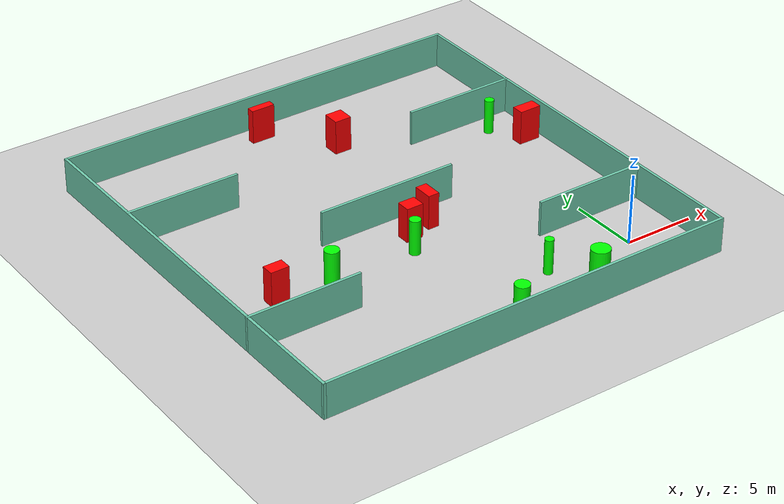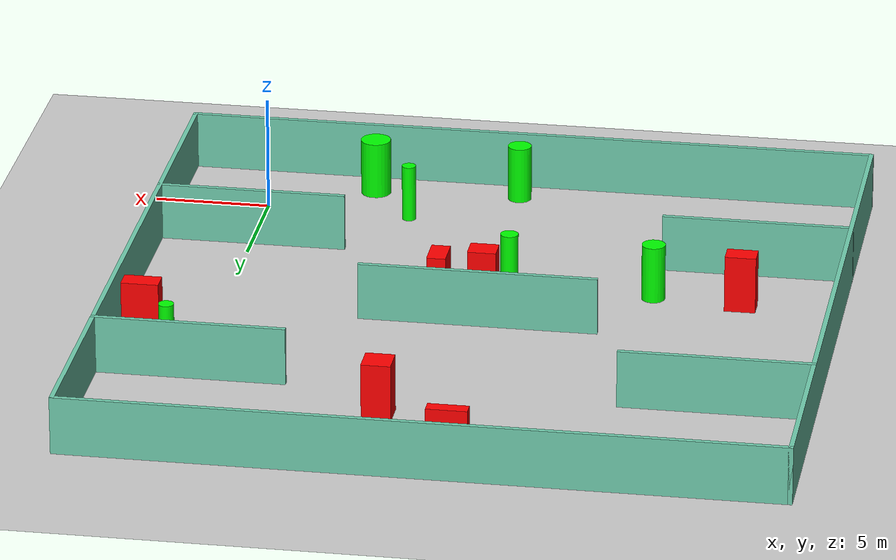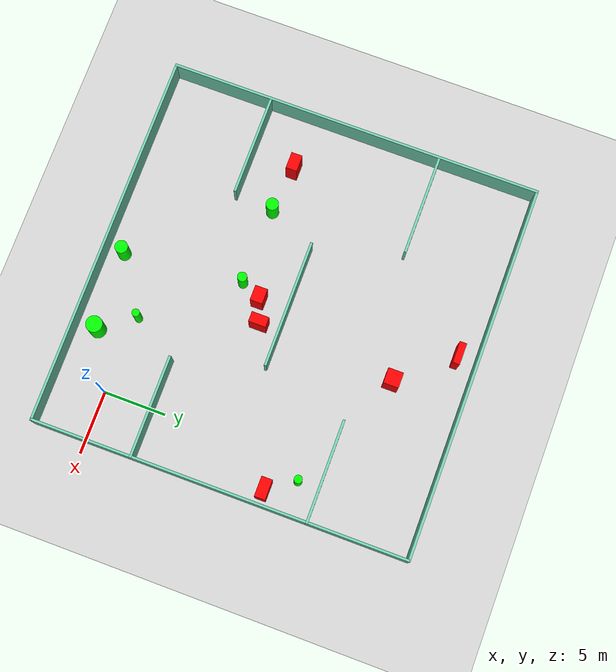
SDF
<sdf version="1.7">
 <world name="default">
  <light name="sun" type="directional">
   <pose>0 0 10 0 -0 0</pose>
   <diffuse>0.8 0.8 0.8 1</diffuse>
   <specular>0.2 0.2 0.2 1</specular>
   <attenuation>
    <range>1000</range>
    <constant>0.9</constant>
    <linear>0.01</linear>
    <quadratic>0.001</quadratic>
   </attenuation>
   <direction>-0.5 0.1 -0.9</direction>
   <spot><inner_angle>0</inner_angle><outer_angle>0</outer_angle><falloff>0</falloff></spot>
  </light>
  <model name="ground_plane">
   <static>1</static>
   <link name="link">
    <collision name="collision">
     <geometry><plane><normal>0 0 1</normal><size>100 100</size></plane></geometry>
     <surface>
      <contact><collide_bitmask>65535</collide_bitmask></contact>
      <friction><ode><mu>100</mu><mu2>50</mu2></ode></friction>
     </surface>
    </collision>
    <visual name="visual">
     <cast_shadows>0</cast_shadows>
     <geometry><plane><normal>0 0 1</normal><size>100 100</size></plane></geometry>
     <material>
      <script><uri>file://media/materials/scripts/gazebo.material</uri><name>Gazebo/Grey</name></script>
     </material>
    </visual>
   </link>
  </model>
  <gravity>0 0 -9.8</gravity>
  <magnetic_field>6e-06 2.3e-05 -4.2e-05</magnetic_field>
  <atmosphere type="adiabatic"/>
  <physics type="ode">
   <max_step_size>0.001</max_step_size>
   <real_time_factor>1</real_time_factor>
   <real_time_update_rate>1000</real_time_update_rate>
  </physics>
  <scene><ambient>0.4 0.4 0.4 1</ambient><background>0.7 0.7 0.7 1</background><shadows>1</shadows></scene>
  <spherical_coordinates>
   <surface_model>EARTH_WGS84</surface_model>
   <latitude_deg>0</latitude_deg>
   <longitude_deg>0</longitude_deg>
   <elevation>0</elevation>
   <heading_deg>0</heading_deg>
  </spherical_coordinates>
  <model name="my_base_walls">
   <link name="Wall_10">
    <collision name="Wall_10_Collision">
     <geometry><box><size>8.2 0.2 2.5</size></box></geometry>
     <pose>0 0 1.25 0 -0 0</pose>
    </collision>
    <visual name="Wall_10_Visual">
     <pose>0 0 1.25 0 -0 0</pose>
     <geometry><box><size>8.2 0.2 2.5</size></box></geometry>
     <material>
      <script><uri>file://media/materials/scripts/gazebo.material</uri><name>Gazebo/Grey</name></script>
      <ambient>0.435294 0.796078 0.67451 1</ambient>
     </material>
     <meta><layer>0</layer></meta>
    </visual>
    <pose>-11 -7 0 0 -0 0</pose>
   </link>
   <link name="Wall_12">
    <collision name="Wall_12_Collision">
     <geometry><box><size>8.2 0.2 2.5</size></box></geometry>
     <pose>0 0 1.25 0 -0 0</pose>
    </collision>
    <visual name="Wall_12_Visual">
     <pose>0 0 1.25 0 -0 0</pose>
     <geometry><box><size>8.2 0.2 2.5</size></box></geometry>
     <material>
      <script><uri>file://media/materials/scripts/gazebo.material</uri><name>Gazebo/Grey</name></script>
      <ambient>0.435294 0.796078 0.67451 1</ambient>
     </material>
     <meta><layer>0</layer></meta>
    </visual>
    <pose>-11 7 0 0 -0 0</pose>
   </link>
   <link name="Wall_14">
    <collision name="Wall_14_Collision">
     <geometry><box><size>8.2 0.2 2.5</size></box></geometry>
     <pose>0 0 1.25 0 -0 0</pose>
    </collision>
    <visual name="Wall_14_Visual">
     <pose>0 0 1.25 0 -0 0</pose>
     <geometry><box><size>8.2 0.2 2.5</size></box></geometry>
     <material>
      <script><uri>file://media/materials/scripts/gazebo.material</uri><name>Gazebo/Grey</name></script>
      <ambient>0.435294 0.796078 0.67451 1</ambient>
     </material>
     <meta><layer>0</layer></meta>
    </visual>
    <pose>11 7 0 0 -0 3.14159</pose>
   </link>
   <link name="Wall_16">
    <collision name="Wall_16_Collision">
     <geometry><box><size>10.2 0.2 2.5</size></box></geometry>
     <pose>0 0 1.25 0 -0 0</pose>
    </collision>
    <visual name="Wall_16_Visual">
     <pose>0 0 1.25 0 -0 0</pose>
     <geometry><box><size>10.2 0.2 2.5</size></box></geometry>
     <material>
      <script><uri>file://media/materials/scripts/gazebo.material</uri><name>Gazebo/Grey</name></script>
      <ambient>0.435294 0.796078 0.67451 1</ambient>
     </material>
     <meta><layer>0</layer></meta>
    </visual>
    <pose>0 0 0 0 -0 3.14159</pose>
   </link>
   <link name="Wall_2">
    <collision name="Wall_2_Collision">
     <geometry><box><size>30.2 0.2 2.5</size></box></geometry>
     <pose>0 0 1.25 0 -0 0</pose>
    </collision>
    <visual name="Wall_2_Visual">
     <pose>0 0 1.25 0 -0 0</pose>
     <geometry><box><size>30.2 0.2 2.5</size></box></geometry>
     <material>
      <script><uri>file://media/materials/scripts/gazebo.material</uri><name>Gazebo/Grey</name></script>
      <ambient>0.435294 0.796078 0.67451 1</ambient>
     </material>
     <meta><layer>0</layer></meta>
    </visual>
    <pose>0 -15 0 0 -0 3.14159</pose>
   </link>
   <link name="Wall_3">
    <collision name="Wall_3_Collision">
     <geometry><box><size>30.2 0.2 2.5</size></box></geometry>
     <pose>0 0 1.25 0 -0 0</pose>
    </collision>
    <visual name="Wall_3_Visual">
     <pose>0 0 1.25 0 -0 0</pose>
     <geometry><box><size>30.2 0.2 2.5</size></box></geometry>
     <material>
      <script><uri>file://media/materials/scripts/gazebo.material</uri><name>Gazebo/Grey</name></script>
      <ambient>0.435294 0.796078 0.67451 1</ambient>
     </material>
     <meta><layer>0</layer></meta>
    </visual>
    <pose>-15 0 0 0 -0 1.5708</pose>
   </link>
   <link name="Wall_4">
    <collision name="Wall_4_Collision">
     <geometry><box><size>30.2 0.2 2.5</size></box></geometry>
     <pose>0 0 1.25 0 -0 0</pose>
    </collision>
    <visual name="Wall_4_Visual">
     <pose>0 0 1.25 0 -0 0</pose>
     <geometry><box><size>30.2 0.2 2.5</size></box></geometry>
     <material>
      <script><uri>file://media/materials/scripts/gazebo.material</uri><name>Gazebo/Grey</name></script>
      <ambient>0.435294 0.796078 0.67451 1</ambient>
     </material>
     <meta><layer>0</layer></meta>
    </visual>
    <pose>0 15 0 0 -0 0</pose>
   </link>
   <link name="Wall_6">
    <collision name="Wall_6_Collision">
     <geometry><box><size>30.2 0.2 2.5</size></box></geometry>
     <pose>0 0 1.25 0 -0 0</pose>
    </collision>
    <visual name="Wall_6_Visual">
     <pose>0 0 1.25 0 -0 0</pose>
     <geometry><box><size>30.2 0.2 2.5</size></box></geometry>
     <material>
      <script><uri>file://media/materials/scripts/gazebo.material</uri><name>Gazebo/Grey</name></script>
      <ambient>0.435294 0.796078 0.67451 1</ambient>
     </material>
     <meta><layer>0</layer></meta>
    </visual>
    <pose>15 0 0 0 -0 1.5708</pose>
   </link>
   <link name="Wall_8">
    <collision name="Wall_8_Collision">
     <geometry><box><size>8.2 0.2 2.5</size></box></geometry>
     <pose>0 0 1.25 0 -0 0</pose>
    </collision>
    <visual name="Wall_8_Visual">
     <pose>0 0 1.25 0 -0 0</pose>
     <geometry><box><size>8.2 0.2 2.5</size></box></geometry>
     <material>
      <script><uri>file://media/materials/scripts/gazebo.material</uri><name>Gazebo/Grey</name></script>
      <ambient>0.435294 0.796078 0.67451 1</ambient>
     </material>
     <meta><layer>0</layer></meta>
    </visual>
    <pose>11 -7 0 0 -0 3.14159</pose>
   </link>
   <static>1</static>
   <pose>-11 11 0 0 -0 0</pose>
  </model>
  <model name="cylinder1">
   <static>1</static>
   <link name="link">
    <inertial>
     <mass>1</mass>
     <inertia><ixx>0.5</ixx><ixy>0</ixy><ixz>0</ixz><iyy>0.5</iyy><iyz>0</iyz><izz>1</izz></inertia>
    </inertial>
    <collision name="collision">
     <geometry><cylinder><radius>0.3256204448500047</radius><length>2.5</length></cylinder></geometry>
    </collision>
    <visual name="visual">
     <geometry><cylinder><radius>0.3256204448500047</radius><length>2.5</length></cylinder></geometry>
     <material>
      <ambient>0 1 0 1</ambient>
      <diffuse>0 1 0 1</diffuse>
      <specular>0.1 0.1 0.1 1</specular>
      <emissive>0 0 0 0</emissive>
     </material>
    </visual>
   </link>
   <pose>1.25044907710177 16.30266442055885 1.25 0 0 0</pose>
  </model>
  <model name="cylinder2">
   <static>1</static>
   <link name="link">
    <inertial>
     <mass>1</mass>
     <inertia><ixx>0.5</ixx><ixy>0</ixy><ixz>0</ixz><iyy>0.5</iyy><iyz>0</iyz><izz>1</izz></inertia>
    </inertial>
    <collision name="collision">
     <geometry><cylinder><radius>0.5043666106140753</radius><length>2.5</length></cylinder></geometry>
    </collision>
    <visual name="visual">
     <geometry><cylinder><radius>0.5043666106140753</radius><length>2.5</length></cylinder></geometry>
     <material>
      <ambient>0 1 0 1</ambient>
      <diffuse>0 1 0 1</diffuse>
      <specular>0.1 0.1 0.1 1</specular>
      <emissive>0 0 0 0</emissive>
     </material>
    </visual>
   </link>
   <pose>-17.936760034613187 7.083891151027638 1.25 0 0 0</pose>
  </model>
  <model name="cylinder3">
   <static>1</static>
   <link name="link">
    <inertial>
     <mass>1</mass>
     <inertia><ixx>0.5</ixx><ixy>0</ixy><ixz>0</ixz><iyy>0.5</iyy><iyz>0</iyz><izz>1</izz></inertia>
    </inertial>
    <collision name="collision">
     <geometry><cylinder><radius>0.30599441614853995</radius><length>2.5</length></cylinder></geometry>
    </collision>
    <visual name="visual">
     <geometry><cylinder><radius>0.30599441614853995</radius><length>2.5</length></cylinder></geometry>
     <material>
      <ambient>0 1 0 1</ambient>
      <diffuse>0 1 0 1</diffuse>
      <specular>0.1 0.1 0.1 1</specular>
      <emissive>0 0 0 0</emissive>
     </material>
    </visual>
   </link>
   <pose>-6.291857124498689 0.33967981548220605 1.25 0 0 0</pose>
  </model>
  <model name="cylinder4">
   <static>1</static>
   <link name="link">
    <inertial>
     <mass>1</mass>
     <inertia><ixx>0.5</ixx><ixy>0</ixy><ixz>0</ixz><iyy>0.5</iyy><iyz>0</iyz><izz>1</izz></inertia>
    </inertial>
    <collision name="collision">
     <geometry><cylinder><radius>0.38484739937268375</radius><length>2.5</length></cylinder></geometry>
    </collision>
    <visual name="visual">
     <geometry><cylinder><radius>0.38484739937268375</radius><length>2.5</length></cylinder></geometry>
     <material>
      <ambient>0 1 0 1</ambient>
      <diffuse>0 1 0 1</diffuse>
      <specular>0.1 0.1 0.1 1</specular>
      <emissive>0 0 0 0</emissive>
     </material>
    </visual>
   </link>
   <pose>-11.731384855071868 6.945841722966595 1.25 0 0 0</pose>
  </model>
  <model name="cylinder5">
   <static>1</static>
   <link name="link">
    <inertial>
     <mass>1</mass>
     <inertia><ixx>0.5</ixx><ixy>0</ixy><ixz>0</ixz><iyy>0.5</iyy><iyz>0</iyz><izz>1</izz></inertia>
    </inertial>
    <collision name="collision">
     <geometry><cylinder><radius>0.514583928708164</radius><length>2.5</length></cylinder></geometry>
    </collision>
    <visual name="visual">
     <geometry><cylinder><radius>0.514583928708164</radius><length>2.5</length></cylinder></geometry>
     <material>
      <ambient>0 1 0 1</ambient>
      <diffuse>0 1 0 1</diffuse>
      <specular>0.1 0.1 0.1 1</specular>
      <emissive>0 0 0 0</emissive>
     </material>
    </visual>
   </link>
   <pose>-10.714962499899418 -2.6088798738249084 1.25 0 0 0</pose>
  </model>
  <model name="cylinder6">
   <static>1</static>
   <link name="link">
    <inertial>
     <mass>1</mass>
     <inertia><ixx>0.5</ixx><ixy>0</ixy><ixz>0</ixz><iyy>0.5</iyy><iyz>0</iyz><izz>1</izz></inertia>
    </inertial>
    <collision name="collision">
     <geometry><cylinder><radius>0.6558999852602257</radius><length>2.5</length></cylinder></geometry>
    </collision>
    <visual name="visual">
     <geometry><cylinder><radius>0.6558999852602257</radius><length>2.5</length></cylinder></geometry>
     <material>
      <ambient>0 1 0 1</ambient>
      <diffuse>0 1 0 1</diffuse>
      <specular>0.1 0.1 0.1 1</specular>
      <emissive>0 0 0 0</emissive>
     </material>
    </visual>
   </link>
   <pose>-4.379782206744533 -2.305206896105815 1.25 0 0 0</pose>
  </model>
  <model name="box1">
   <static>1</static>
   <link name="link">
    <inertial>
     <mass>1</mass>
     <inertia><ixx>0.083</ixx><ixy>0</ixy><ixz>0</ixz><iyy>0.083</iyy><iyz>0</iyz><izz>0.083</izz></inertia>
    </inertial>
    <collision name="collision">
     <geometry><box><size>1.2332162899547594 1.2187970876728365 2.5</size></box></geometry>
    </collision>
    <visual name="visual">
     <geometry><box><size>1.2332162899547594 1.2187970876728365 2.5</size></box></geometry>
     <material>
      <ambient>1 0 0 1</ambient>
      <diffuse>1 0 0 1</diffuse>
      <specular>0.1 0.1 0.1 1</specular>
      <emissive>0 0 0 0</emissive>
     </material>
    </visual>
    <sensor name="my_contact" type="contact">
     <contact><collision>box_collision</collision><topic>__default_topic__</topic></contact>
    </sensor>
   </link>
   <pose>-8.386984470382806 20.409402777216364 1.25 0 0 0</pose>
  </model>
  <model name="box2">
   <static>1</static>
   <link name="link">
    <inertial>
     <mass>1</mass>
     <inertia><ixx>0.083</ixx><ixy>0</ixy><ixz>0</ixz><iyy>0.083</iyy><iyz>0</iyz><izz>0.083</izz></inertia>
    </inertial>
    <collision name="collision">
     <geometry><box><size>1.5988287578983305 0.8687343495781503 2.5</size></box></geometry>
    </collision>
    <visual name="visual">
     <geometry><box><size>1.5988287578983305 0.8687343495781503 2.5</size></box></geometry>
     <material>
      <ambient>1 0 0 1</ambient>
      <diffuse>1 0 0 1</diffuse>
      <specular>0.1 0.1 0.1 1</specular>
      <emissive>0 0 0 0</emissive>
     </material>
    </visual>
    <sensor name="my_contact" type="contact">
     <contact><collision>box_collision</collision><topic>__default_topic__</topic></contact>
    </sensor>
   </link>
   <pose>2.7472725146819172 14.103118546792604 1.25 0 0 0</pose>
  </model>
  <model name="box3">
   <static>1</static>
   <link name="link">
    <inertial>
     <mass>1</mass>
     <inertia><ixx>0.083</ixx><ixy>0</ixy><ixz>0</ixz><iyy>0.083</iyy><iyz>0</iyz><izz>0.083</izz></inertia>
    </inertial>
    <collision name="collision">
     <geometry><box><size>1.2194432324219175 0.9889076179401917 2.5</size></box></geometry>
    </collision>
    <visual name="visual">
     <geometry><box><size>1.2194432324219175 0.9889076179401917 2.5</size></box></geometry>
     <material>
      <ambient>1 0 0 1</ambient>
      <diffuse>1 0 0 1</diffuse>
      <specular>0.1 0.1 0.1 1</specular>
      <emissive>0 0 0 0</emissive>
     </material>
    </visual>
    <sensor name="my_contact" type="contact">
     <contact><collision>box_collision</collision><topic>__default_topic__</topic></contact>
    </sensor>
   </link>
   <pose>-10.871134576911242 8.626541786294974 1.25 0 0 0</pose>
  </model>
  <model name="box4">
   <static>1</static>
   <link name="link">
    <inertial>
     <mass>1</mass>
     <inertia><ixx>0.083</ixx><ixy>0</ixy><ixz>0</ixz><iyy>0.083</iyy><iyz>0</iyz><izz>0.083</izz></inertia>
    </inertial>
    <collision name="collision">
     <geometry><box><size>1.3250912860313266 0.8948006905132379 2.5</size></box></geometry>
    </collision>
    <visual name="visual">
     <geometry><box><size>1.3250912860313266 0.8948006905132379 2.5</size></box></geometry>
     <material>
      <ambient>1 0 0 1</ambient>
      <diffuse>1 0 0 1</diffuse>
      <specular>0.1 0.1 0.1 1</specular>
      <emissive>0 0 0 0</emissive>
     </material>
    </visual>
    <sensor name="my_contact" type="contact">
     <contact><collision>box_collision</collision><topic>__default_topic__</topic></contact>
    </sensor>
   </link>
   <pose>-21.731871064419842 7.4888112835937015 1.25 0 0 0</pose>
  </model>
  <model name="box5">
   <static>1</static>
   <link name="link">
    <inertial>
     <mass>1</mass>
     <inertia><ixx>0.083</ixx><ixy>0</ixy><ixz>0</ixz><iyy>0.083</iyy><iyz>0</iyz><izz>0.083</izz></inertia>
    </inertial>
    <collision name="collision">
     <geometry><box><size>1.7198551546290863 0.5543658045590611 2.5</size></box></geometry>
    </collision>
    <visual name="visual">
     <geometry><box><size>1.7198551546290863 0.5543658045590611 2.5</size></box></geometry>
     <material>
      <ambient>1 0 0 1</ambient>
      <diffuse>1 0 0 1</diffuse>
      <specular>0.1 0.1 0.1 1</specular>
      <emissive>0 0 0 0</emissive>
     </material>
    </visual>
    <sensor name="my_contact" type="contact">
     <contact><collision>box_collision</collision><topic>__default_topic__</topic></contact>
    </sensor>
   </link>
   <pose>-11.920886713967544 24.482672951695363 1.25 0 0 0</pose>
  </model>
  <model name="box6">
   <static>1</static>
   <link name="link">
    <inertial>
     <mass>1</mass>
     <inertia><ixx>0.083</ixx><ixy>0</ixy><ixz>0</ixz><iyy>0.083</iyy><iyz>0</iyz><izz>0.083</izz></inertia>
    </inertial>
    <collision name="collision">
     <geometry><box><size>0.8101208426475703 1.3938364943612813 2.5</size></box></geometry>
    </collision>
    <visual name="visual">
     <geometry><box><size>0.8101208426475703 1.3938364943612813 2.5</size></box></geometry>
     <material>
      <ambient>1 0 0 1</ambient>
      <diffuse>1 0 0 1</diffuse>
      <specular>0.1 0.1 0.1 1</specular>
      <emissive>0 0 0 0</emissive>
     </material>
    </visual>
    <sensor name="my_contact" type="contact">
     <contact><collision>box_collision</collision><topic>__default_topic__</topic></contact>
    </sensor>
   </link>
   <pose>-9.063937588383698 9.30173885230646 1.25 0 0 0</pose>
  </model>
 </world>
</sdf>
